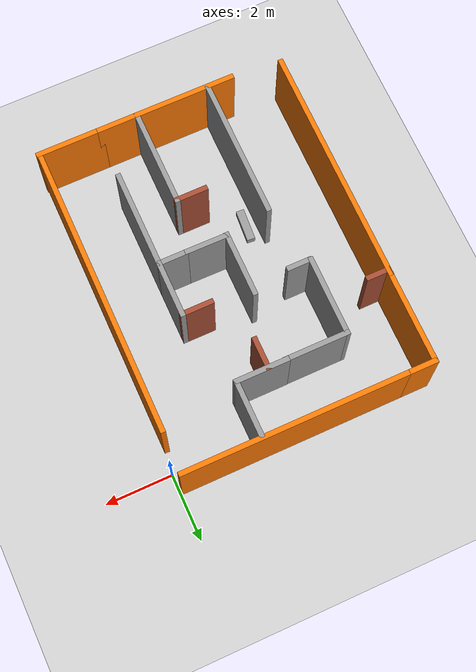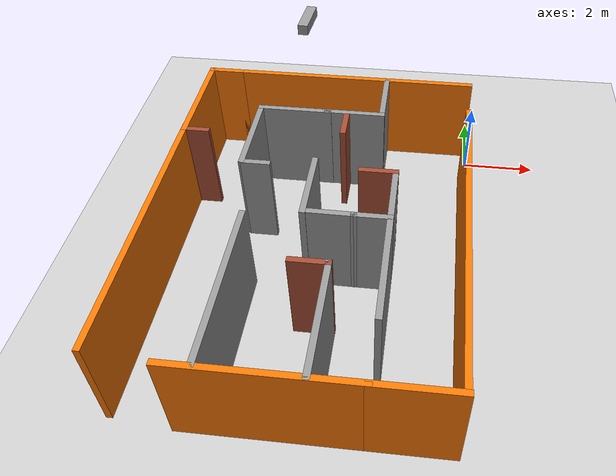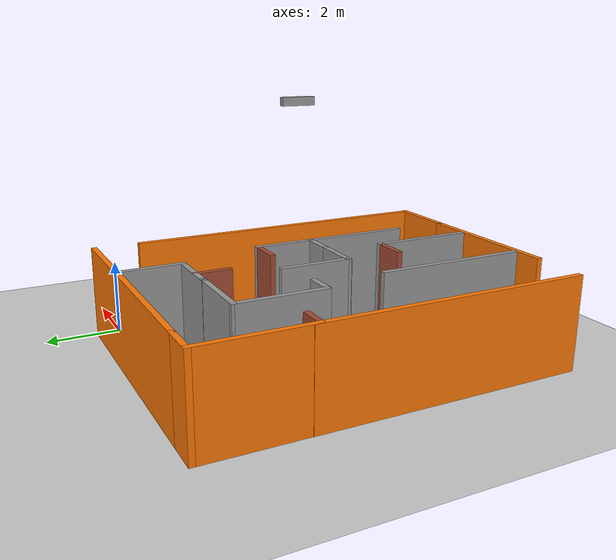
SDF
<sdf version="1.7">
 <world name="default">
  <light name="sun" type="directional">
   <pose>0 0 10 0 -0 0</pose>
   <diffuse>0.8 0.8 0.8 1</diffuse>
   <specular>0.2 0.2 0.2 1</specular>
   <attenuation>
    <range>1000</range>
    <constant>0.9</constant>
    <linear>0.01</linear>
    <quadratic>0.001</quadratic>
   </attenuation>
   <direction>-0.5 0.1 -0.9</direction>
   <spot><inner_angle>0</inner_angle><outer_angle>0</outer_angle><falloff>0</falloff></spot>
  </light>
  <model name="ground_plane">
   <static>1</static>
   <link name="link">
    <collision name="collision">
     <geometry><plane><normal>0 0 1</normal><size>100 100</size></plane></geometry>
     <surface><friction><ode><mu>100</mu><mu2>50</mu2></ode></friction></surface>
    </collision>
    <visual name="visual">
     <cast_shadows>0</cast_shadows>
     <geometry><plane><normal>0 0 1</normal><size>100 100</size></plane></geometry>
     <material>
      <script><uri>file://media/materials/scripts/gazebo.material</uri><name>Gazebo/Grey</name></script>
     </material>
    </visual>
   </link>
  </model>
  <gravity>0 0 -9.8</gravity>
  <magnetic_field>6e-06 2.3e-05 -4.2e-05</magnetic_field>
  <atmosphere type="adiabatic"/>
  <physics type="ode">
   <max_step_size>0.001</max_step_size>
   <real_time_factor>1</real_time_factor>
   <real_time_update_rate>1000</real_time_update_rate>
  </physics>
  <scene><ambient>0.4 0.4 0.4 1</ambient><background>0.7 0.7 0.7 1</background><shadows>1</shadows></scene>
  <audio><device>default</device></audio>
  <spherical_coordinates>
   <surface_model>EARTH_WGS84</surface_model>
   <latitude_deg>0</latitude_deg>
   <longitude_deg>0</longitude_deg>
   <elevation>0</elevation>
   <heading_deg>0</heading_deg>
  </spherical_coordinates>
  <model name="Maze">
   <pose>-3.84451 -4.4488 0 0 -0 0</pose>
   <link name="Wall_21">
    <collision name="Wall_21_Collision">
     <geometry><box><size>4.25 0.15 2.5</size></box></geometry>
     <pose>0 0 1.25 0 -0 0</pose>
    </collision>
    <visual name="Wall_21_Visual">
     <pose>0 0 1.25 0 -0 0</pose>
     <geometry><box><size>4.25 0.15 2.5</size></box></geometry>
     <material>
      <script><uri>file://media/materials/scripts/gazebo.material</uri><name>Gazebo/Grey</name></script>
      <ambient>0.996078 0.47451 0.0196078 1</ambient>
     </material>
     <meta><layer>0</layer></meta>
    </visual>
    <pose>-0.166584 -4.99211 0 0 -0 0</pose>
   </link>
   <link name="Wall_23">
    <collision name="Wall_23_Collision">
     <geometry><box><size>4.25 0.15 2.5</size></box></geometry>
     <pose>0 0 1.25 0 -0 0</pose>
    </collision>
    <visual name="Wall_23_Visual">
     <pose>0 0 1.25 0 -0 0</pose>
     <geometry><box><size>4.25 0.15 2.5</size></box></geometry>
     <material>
      <script><uri>file://media/materials/scripts/gazebo.material</uri><name>Gazebo/Grey</name></script>
      <ambient>0 0 0 1</ambient>
     </material>
     <meta><layer>0</layer></meta>
    </visual>
    <pose>-1.47697 -2.88891 0 0 -0 1.5708</pose>
   </link>
   <link name="Wall_25">
    <collision name="Wall_25_Collision">
     <geometry><box><size>7.25 0.15 2.5</size></box></geometry>
     <pose>0 0 1.25 0 -0 0</pose>
    </collision>
    <visual name="Wall_25_Visual">
     <pose>0 0 1.25 0 -0 0</pose>
     <geometry><box><size>7.25 0.15 2.5</size></box></geometry>
     <material>
      <script><uri>file://media/materials/scripts/gazebo.material</uri><name>Gazebo/Grey</name></script>
      <ambient>0.996078 0.47451 0.0196078 1</ambient>
     </material>
     <meta><layer>0</layer></meta>
    </visual>
    <pose>-3.73341 -1.28759 0 0 -0 1.5708</pose>
   </link>
   <link name="Wall_30">
    <collision name="Wall_30_Collision">
     <geometry><box><size>0.75 0.15 2.5</size></box></geometry>
     <pose>0 0 1.25 0 -0 0</pose>
    </collision>
    <visual name="Wall_30_Visual">
     <pose>0 0 1.25 0 -0 0</pose>
     <geometry><box><size>0.75 0.15 2.5</size></box></geometry>
     <material>
      <script><uri>file://media/materials/scripts/gazebo.material</uri><name>Gazebo/Grey</name></script>
      <ambient>0 0 0 1</ambient>
     </material>
     <meta><layer>0</layer></meta>
    </visual>
    <pose>-1.56741 0.99221 0 0 -0 0</pose>
   </link>
   <link name="Wall_34">
    <collision name="Wall_34_Collision">
     <geometry><box><size>1.3428 0.15 2.5</size></box></geometry>
     <pose>0 0 1.25 0 -0 0</pose>
    </collision>
    <visual name="Wall_34_Visual">
     <pose>0 0 1.25 0 -0 0</pose>
     <geometry><box><size>1.3428 0.15 2.5</size></box></geometry>
     <material>
      <script><uri>file://media/materials/scripts/gazebo.material</uri><name>Gazebo/Grey</name></script>
      <ambient>0 0 0 1</ambient>
     </material>
     <meta><layer>0</layer></meta>
    </visual>
    <pose>0.487086 -0.59755 0 0 -0 -0.009643</pose>
   </link>
   <link name="Wall_35">
    <collision name="Wall_35_Collision">
     <geometry><box><size>1 0.15 2.5</size></box></geometry>
     <pose>0 0 1.25 0 -0 0</pose>
    </collision>
    <visual name="Wall_35_Visual">
     <pose>0 0 1.25 0 -0 0</pose>
     <geometry><box><size>1 0.15 2.5</size></box></geometry>
     <material>
      <script><uri>file://media/materials/scripts/gazebo.material</uri><name>Gazebo/Grey</name></script>
      <ambient>0 0 0 1</ambient>
     </material>
     <meta><layer>0</layer></meta>
    </visual>
    <pose>1.50837 -0.6033 0 0 -0 0</pose>
   </link>
   <link name="Wall_36">
    <collision name="Wall_36_Collision">
     <geometry><box><size>1.75 0.15 2.5</size></box></geometry>
     <pose>0 0 1.25 0 -0 0</pose>
    </collision>
    <visual name="Wall_36_Visual">
     <pose>0 0 1.25 0 -0 0</pose>
     <geometry><box><size>1.75 0.15 2.5</size></box></geometry>
     <material>
      <script><uri>file://media/materials/scripts/gazebo.material</uri><name>Gazebo/Grey</name></script>
      <ambient>0 0 0 1</ambient>
     </material>
     <meta><layer>0</layer></meta>
    </visual>
    <pose>1.93337 0.1967 0 0 -0 1.5708</pose>
   </link>
   <link name="Wall_37">
    <collision name="Wall_37_Collision">
     <geometry><box><size>1 0.15 2.5</size></box></geometry>
     <pose>0 0 1.25 0 -0 0</pose>
    </collision>
    <visual name="Wall_37_Visual">
     <pose>0 0 1.25 0 -0 0</pose>
     <geometry><box><size>1 0.15 2.5</size></box></geometry>
     <material>
      <script><uri>file://media/materials/scripts/gazebo.material</uri><name>Gazebo/Bricks</name></script>
      <ambient>0.435294 0.796078 0.67451 1</ambient>
     </material>
     <meta><layer>0</layer></meta>
    </visual>
    <pose>1.50837 0.9967 0 0 -0 3.14159</pose>
   </link>
   <link name="Wall_39">
    <collision name="Wall_39_Collision">
     <geometry><box><size>3 0.15 2.5</size></box></geometry>
     <pose>0 0 1.25 0 -0 0</pose>
    </collision>
    <visual name="Wall_39_Visual">
     <pose>0 0 1.25 0 -0 0</pose>
     <geometry><box><size>3 0.15 2.5</size></box></geometry>
     <material>
      <script><uri>file://media/materials/scripts/gazebo.material</uri><name>Gazebo/Grey</name></script>
      <ambient>0 0 0 1</ambient>
     </material>
     <meta><layer>0</layer></meta>
    </visual>
    <pose>1.93337 -2.0283 0 0 -0 -1.5708</pose>
   </link>
   <link name="Wall_41">
    <collision name="Wall_41_Collision">
     <geometry><box><size>3 0.15 2.5</size></box></geometry>
     <pose>0 0 1.25 0 -0 0</pose>
    </collision>
    <visual name="Wall_41_Visual">
     <pose>0 0 1.25 0 -0 0</pose>
     <geometry><box><size>3 0.15 2.5</size></box></geometry>
     <material>
      <script><uri>file://media/materials/scripts/gazebo.material</uri><name>Gazebo/Grey</name></script>
      <ambient>0 0 0 1</ambient>
     </material>
     <meta><layer>0</layer></meta>
    </visual>
    <pose>0.727679 -3.55281 0 0 -0 1.5708</pose>
   </link>
   <link name="Wall_43">
    <collision name="Wall_43_Collision">
     <geometry><box><size>1 0.15 2.5</size></box></geometry>
     <pose>0 0 1.25 0 -0 0</pose>
    </collision>
    <visual name="Wall_43_Visual">
     <pose>0 0 1.25 0 -0 0</pose>
     <geometry><box><size>1 0.15 2.5</size></box></geometry>
     <material>
      <script><uri>file://media/materials/scripts/gazebo.material</uri><name>Gazebo/Bricks</name></script>
      <ambient>0.435294 0.796078 0.67451 1</ambient>
     </material>
     <meta><layer>0</layer></meta>
    </visual>
    <pose>0.302679 -2.12782 0 0 -0 3.14159</pose>
   </link>
   <link name="Wall_46">
    <collision name="Wall_46_Collision">
     <geometry><box><size>1.64061 0.15 2.5</size></box></geometry>
     <pose>0 0 1.25 0 -0 0</pose>
    </collision>
    <visual name="Wall_46_Visual">
     <pose>0 0 1.25 0 -0 0</pose>
     <geometry><box><size>1.64061 0.15 2.5</size></box></geometry>
     <material>
      <script><uri>file://media/materials/scripts/gazebo.material</uri><name>Gazebo/Grey</name></script>
      <ambient>0 0 0 1</ambient>
     </material>
     <meta><layer>0</layer></meta>
    </visual>
    <pose>0.633461 3.31645 0 0 -0 0</pose>
   </link>
   <link name="Wall_52">
    <collision name="Wall_52_Collision">
     <geometry><box><size>2.44702 0.15 2.5</size></box></geometry>
     <pose>0 0 1.25 0 -0 0</pose>
    </collision>
    <visual name="Wall_52_Visual">
     <pose>0 0 1.25 0 -0 0</pose>
     <geometry><box><size>2.44702 0.15 2.5</size></box></geometry>
     <material>
      <script><uri>file://media/materials/scripts/gazebo.material</uri><name>Gazebo/Grey</name></script>
      <ambient>0 0 0 1</ambient>
     </material>
     <meta><layer>0</layer></meta>
    </visual>
    <pose>-1.91791 2.16081 0 0 -0 1.56844</pose>
   </link>
   <link name="Wall_53">
    <collision name="Wall_53_Collision">
     <geometry><box><size>2 0.15 2.5</size></box></geometry>
     <pose>0 0 1.25 0 -0 0</pose>
    </collision>
    <visual name="Wall_53_Visual">
     <pose>0 0 1.25 0 -0 0</pose>
     <geometry><box><size>2 0.15 2.5</size></box></geometry>
     <material>
      <script><uri>file://media/materials/scripts/gazebo.material</uri><name>Gazebo/Grey</name></script>
      <ambient>0 0 0 1</ambient>
     </material>
     <meta><layer>0</layer></meta>
    </visual>
    <pose>-0.99021 3.30921 0 0 -0 0</pose>
   </link>
   <link name="Wall_61">
    <collision name="Wall_61_Collision">
     <geometry><box><size>1 0.15 2.5</size></box></geometry>
     <pose>0 0 1.25 0 -0 0</pose>
    </collision>
    <visual name="Wall_61_Visual">
     <pose>0 0 1.25 0 -0 0</pose>
     <geometry><box><size>1 0.15 2.5</size></box></geometry>
     <material>
      <script><uri>file://media/materials/scripts/gazebo.material</uri><name>Gazebo/Grey</name></script>
      <ambient>0.996078 0.47451 0.0196078 1</ambient>
     </material>
     <meta><layer>0</layer></meta>
    </visual>
    <pose>-3.30144 4.99211 0 0 -0 3.14159</pose>
   </link>
   <link name="Wall_63">
    <collision name="Wall_63_Collision">
     <geometry><box><size>3 0.15 2.5</size></box></geometry>
     <pose>0 0 1.25 0 -0 0</pose>
    </collision>
    <visual name="Wall_63_Visual">
     <pose>0 0 1.25 0 -0 0</pose>
     <geometry><box><size>3 0.15 2.5</size></box></geometry>
     <material>
      <script><uri>file://media/materials/scripts/gazebo.material</uri><name>Gazebo/Grey</name></script>
      <ambient>0.996078 0.47451 0.0196078 1</ambient>
     </material>
     <meta><layer>0</layer></meta>
    </visual>
    <pose>-3.72644 3.56711 0 0 -0 -1.5708</pose>
   </link>
   <link name="Wall_65">
    <collision name="Wall_65_Collision">
     <geometry><box><size>6.75 0.15 2.5</size></box></geometry>
     <pose>0 0 1.25 0 -0 0</pose>
    </collision>
    <visual name="Wall_65_Visual">
     <pose>0 0 1.25 0 -0 0</pose>
     <geometry><box><size>6.75 0.15 2.5</size></box></geometry>
     <material>
      <script><uri>file://media/materials/scripts/gazebo.material</uri><name>Gazebo/Grey</name></script>
      <ambient>0.996078 0.47451 0.0196078 1</ambient>
     </material>
     <meta><layer>0</layer></meta>
    </visual>
    <pose>0.42356 4.99211 0 0 -0 0</pose>
   </link>
   <link name="Wall_67">
    <collision name="Wall_67_Collision">
     <geometry><box><size>8.75 0.15 2.5</size></box></geometry>
     <pose>0 0 1.25 0 -0 0</pose>
    </collision>
    <visual name="Wall_67_Visual">
     <pose>0 0 1.25 0 -0 0</pose>
     <geometry><box><size>8.75 0.15 2.5</size></box></geometry>
     <material>
      <script><uri>file://media/materials/scripts/gazebo.material</uri><name>Gazebo/Grey</name></script>
      <ambient>0.996078 0.47451 0.0196078 1</ambient>
     </material>
     <meta><layer>0</layer></meta>
    </visual>
    <pose>3.70855 -0.575644 0 0 -0 -1.5708</pose>
   </link>
   <link name="Wall_69">
    <collision name="Wall_69_Collision">
     <geometry><box><size>2 0.15 2.5</size></box></geometry>
     <pose>0 0 1.25 0 -0 0</pose>
    </collision>
    <visual name="Wall_69_Visual">
     <pose>0 0 1.25 0 -0 0</pose>
     <geometry><box><size>2 0.15 2.5</size></box></geometry>
     <material>
      <script><uri>file://media/materials/scripts/gazebo.material</uri><name>Gazebo/Grey</name></script>
      <ambient>0.996078 0.47451 0.0196078 1</ambient>
     </material>
     <meta><layer>0</layer></meta>
    </visual>
    <pose>2.80842 -4.99211 0 0 -0 0</pose>
   </link>
   <link name="Wall_71">
    <collision name="Wall_71_Collision">
     <geometry><box><size>0.75 0.15 2.5</size></box></geometry>
     <pose>0 0 1.25 0 -0 0</pose>
    </collision>
    <visual name="Wall_71_Visual">
     <pose>0 0 1.25 0 -0 0</pose>
     <geometry><box><size>0.75 0.15 2.5</size></box></geometry>
     <material>
      <script><uri>file://media/materials/scripts/gazebo.material</uri><name>Gazebo/Bricks</name></script>
      <ambient>0 0 0 1</ambient>
     </material>
     <meta><layer>0</layer></meta>
    </visual>
    <pose>-3.42644 2.14211 0 0 -0 0</pose>
   </link>
   <link name="Wall_73">
    <collision name="Wall_73_Collision">
     <geometry><box><size>2 0.15 2.5</size></box></geometry>
     <pose>0 0 1.25 0 -0 0</pose>
    </collision>
    <visual name="Wall_73_Visual">
     <pose>0 0 1.25 0 -0 0</pose>
     <geometry><box><size>2 0.15 2.5</size></box></geometry>
     <material>
      <script><uri>file://media/materials/scripts/gazebo.material</uri><name>Gazebo/Grey</name></script>
      <ambient>0 0 0 1</ambient>
     </material>
     <meta><layer>0</layer></meta>
    </visual>
    <pose>-0.109202 0.3217 0 0 -0 1.5708</pose>
   </link>
   <link name="Wall_79">
    <collision name="Wall_79_Collision">
     <geometry><box><size>1.75 0.15 2.5</size></box></geometry>
     <pose>0 0 1.25 0 -0 0</pose>
    </collision>
    <visual name="Wall_79_Visual">
     <pose>0 0 1.25 0 -0 0</pose>
     <geometry><box><size>1.75 0.15 2.5</size></box></geometry>
     <material>
      <script><uri>file://media/materials/scripts/gazebo.material</uri><name>Gazebo/Grey</name></script>
      <ambient>0 0 0 1</ambient>
     </material>
     <meta><layer>0</layer></meta>
    </visual>
    <pose>1.37874 4.11646 0 0 -0 1.5708</pose>
   </link>
   <link name="Wall_81">
    <collision name="Wall_81_Collision">
     <geometry><box><size>1 0.15 2.5</size></box></geometry>
     <pose>0 0 1.25 0 -0 0</pose>
    </collision>
    <visual name="Wall_81_Visual">
     <pose>0 0 1.25 0 -0 0</pose>
     <geometry><box><size>1 0.15 2.5</size></box></geometry>
     <material>
      <script><uri>file://media/materials/scripts/gazebo.material</uri><name>Gazebo/Bricks</name></script>
      <ambient>0.435294 0.796078 0.67451 1</ambient>
     </material>
     <meta><layer>0</layer></meta>
    </visual>
    <pose>0.438493 2.88286 0 0 -0 -1.5708</pose>
   </link>
   <static>1</static>
  </model>
  <model name="model1">
   <link name="link_0">
    <inertial>
     <mass>1</mass>
     <inertia>
      <ixx>0.166667</ixx>
      <ixy>0</ixy>
      <ixz>0</ixz>
      <iyy>0.166667</iyy>
      <iyz>0</iyz>
      <izz>0.166667</izz>
     </inertia>
    </inertial>
    <pose>4e-06 -2e-06 -5e-06 0 -0 1.49784</pose>
    <visual name="visual">
     <geometry><box><size>0.8 0.2 0.2</size></box></geometry>
     <material>
      <lighting>1</lighting>
      <script><uri>file://media/materials/scripts/gazebo.material</uri><name>Gazebo/Grey</name></script>
      <shader type="pixel"><normal_map>__default__</normal_map></shader>
      <ambient>0.3 0.3 0.3 1</ambient>
      <diffuse>0.7 0.7 0.7 1</diffuse>
      <specular>0.01 0.01 0.01 1</specular>
      <emissive>0 0 0 1</emissive>
     </material>
    </visual>
    <collision name="collision">
     <geometry><box><size>0.8 0.2 0.2</size></box></geometry>
     <surface>
      <friction>
       <ode><mu>1</mu><mu2>1</mu2><fdir1>0 0 0</fdir1><slip1>0</slip1><slip2>0</slip2></ode>
       <torsional>
        <coefficient>1</coefficient>
        <patch_radius>0</patch_radius>
        <surface_radius>0</surface_radius>
        <use_patch_radius>1</use_patch_radius>
        <ode><slip>0</slip></ode>
       </torsional>
      </friction>
      <bounce><restitution_coefficient>0</restitution_coefficient><threshold>1e+06</threshold></bounce>
      <contact>
       <collide_without_contact>0</collide_without_contact>
       <collide_without_contact_bitmask>1</collide_without_contact_bitmask>
       <collide_bitmask>1</collide_bitmask>
       <ode>
        <soft_cfm>0</soft_cfm>
        <soft_erp>0.2</soft_erp>
        <kp>1e+13</kp>
        <kd>1</kd>
        <max_vel>0.01</max_vel>
        <min_depth>0</min_depth>
       </ode>
       <bullet>
        <split_impulse>1</split_impulse>
        <split_impulse_penetration_threshold>-0.01</split_impulse_penetration_threshold>
        <soft_cfm>0</soft_cfm>
        <soft_erp>0.2</soft_erp>
        <kp>1e+13</kp>
        <kd>1</kd>
       </bullet>
      </contact>
     </surface>
    </collision>
    <sensor type="camera" name="camara">
     <pose>0 0 0 0 1.57 0</pose>
     <update_rate>30</update_rate>
     <visualize>true</visualize>
     <camera name="head">
      <horizontal_fov>1.0856</horizontal_fov>
      <image><width>1280</width><height>720</height><format>R8G8B8</format></image>
      <clip><near>0.03</near><far>100</far></clip>
      <noise><type>gaussian</type><mean>0</mean><stddev>0.007</stddev></noise>
     </camera>
     <plugin name="camera_controller" filename="libgazebo_ros_camera.so">
      <alwaysOn>true</alwaysOn>
      <updateRate>0.0</updateRate>
      <cameraName>camara</cameraName>
      <imageTopicName>image_raw</imageTopicName>
      <cameraInfoTopicName>camera_info</cameraInfoTopicName>
      <frameName>camera_link</frameName>
      <hackBaseline>0.07</hackBaseline>
      <distortionK1>0.0</distortionK1>
      <distortionK2>0.0</distortionK2>
      <distortionK3>0.0</distortionK3>
      <distortionT1>0.0</distortionT1>
      <distortionT2>0.0</distortionT2>
     </plugin>
    </sensor>
   </link>
   <static>1</static>
   <pose>-3.8369 -3.6453 6.4927 0 -0 0</pose>
  </model>
 </world>
</sdf>
